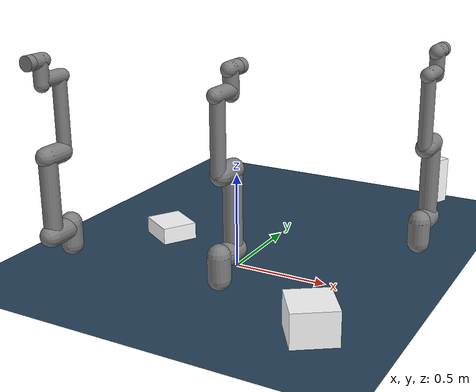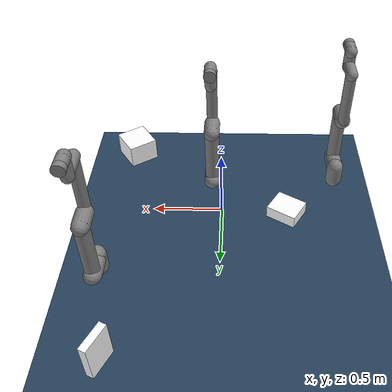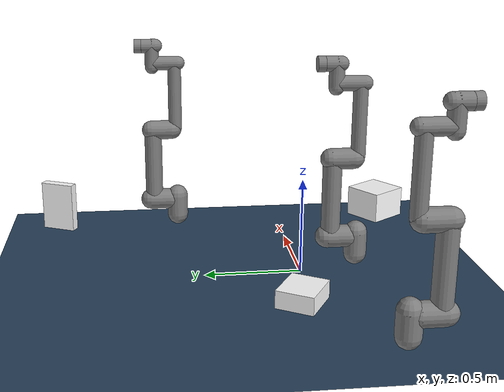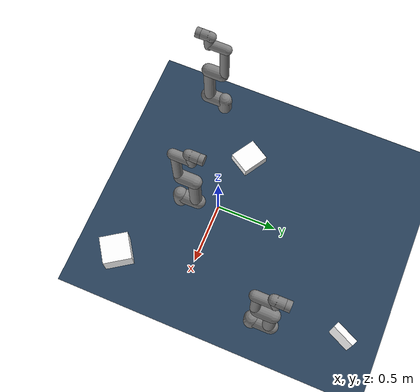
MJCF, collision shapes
<mujoco model="ur5e scene">
  <!--include file="ur5e.xml"/-->
  <include file="ur5e_three.xml"/>
  <include file="objs_three.xml"/>

  <statistic center="0.3 0 0.4" extent="0.8"/>

  <visual>
    <headlight diffuse="0.6 0.6 0.6" ambient="0.1 0.1 0.1" specular="0 0 0"/>
    <rgba haze="0.15 0.25 0.35 1"/>
    <global azimuth="120" elevation="-20"/>
  </visual>

  <asset>
    <texture type="skybox" builtin="gradient" rgb1="0.3 0.5 0.7" rgb2="0 0 0" width="512" height="3072"/>
    <texture type="2d" name="groundplane" builtin="checker" mark="edge" rgb1="0.2 0.3 0.4" rgb2="0.1 0.2 0.3"
      markrgb="0.8 0.8 0.8" width="300" height="300"/>
    <material name="groundplane" texture="groundplane" texuniform="true" texrepeat="5 5" reflectance="0.2"/>
  </asset>

  <worldbody>
    <light pos="0 0 1.5" dir="0 0 -1" directional="true"/>
    <geom name="floor" size="0 0 0.05" type="plane" material="groundplane"/>
  </worldbody>
</mujoco>

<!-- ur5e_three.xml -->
<mujoco model="ur5e">
  <compiler angle="radian" meshdir="ur5e_assets" autolimits="true"/>

  <option integrator="implicitfast"/>

  <default>
    <default class="ur5e">
      <material specular="0.5" shininess="0.25"/>
      <joint axis="0 1 0" range="-6.28319 6.28319" armature="0.1"/>
      <general gaintype="fixed" biastype="affine" ctrlrange="-6.2831 6.2831" gainprm="2000" biasprm="0 -2000 -400"
        forcerange="-150 150"/>
      <default class="size3">
        <default class="size3_limited">
          <joint range="-3.1415 3.1415"/>
          <general ctrlrange="-3.1415 3.1415"/>
        </default>
      </default>
      <default class="size1">
        <general gainprm="500" biasprm="0 -500 -100" forcerange="-28 28"/>
      </default>
      <default class="visual">
        <geom type="mesh" contype="0" conaffinity="0" group="2"/>
      </default>
      <default class="collision">
        <geom type="capsule" group="3"/>
        <default class="eef_collision">
          <geom type="cylinder"/>
        </default>
      </default>
      <site size="0.001" rgba="0.5 0.5 0.5 0.3" group="4"/>
    </default>
  </default>

  <asset>
    <material class="ur5e" name="black" rgba="0.033 0.033 0.033 1"/>
    <material class="ur5e" name="jointgray" rgba="0.278 0.278 0.278 1"/>
    <material class="ur5e" name="linkgray" rgba="0.82 0.82 0.82 1"/>
    <material class="ur5e" name="urblue" rgba="0.49 0.678 0.8 1"/>

    <mesh file="base_0.obj"/>
    <mesh file="base_1.obj"/>
    <mesh file="shoulder_0.obj"/>
    <mesh file="shoulder_1.obj"/>
    <mesh file="shoulder_2.obj"/>
    <mesh file="upperarm_0.obj"/>
    <mesh file="upperarm_1.obj"/>
    <mesh file="upperarm_2.obj"/>
    <mesh file="upperarm_3.obj"/>
    <mesh file="forearm_0.obj"/>
    <mesh file="forearm_1.obj"/>
    <mesh file="forearm_2.obj"/>
    <mesh file="forearm_3.obj"/>
    <mesh file="wrist1_0.obj"/>
    <mesh file="wrist1_1.obj"/>
    <mesh file="wrist1_2.obj"/>
    <mesh file="wrist2_0.obj"/>
    <mesh file="wrist2_1.obj"/>
    <mesh file="wrist2_2.obj"/>
    <mesh file="wrist3.obj"/>
  </asset>

  <worldbody>
    <light name="spotlight" mode="targetbodycom" target="wrist_2_link" pos="0 -1 2"/>
    <body name="base" pos="0.78679577 0.60309857 0.0" quat="6.123234e-17 0 0 1" childclass="ur5e">
      <inertial mass="4.0" pos="0 0 0" diaginertia="0.00443333156 0.00443333156 0.0072"/>
      <geom mesh="base_0" material="black" class="visual"/>
      <geom mesh="base_1" material="jointgray" class="visual"/>
      <body name="shoulder_link" pos="0 0 0.163" quat="0 0 0 1">
        <inertial mass="3.7" pos="0 0 0" diaginertia="0.0102675 0.0102675 0.00666"/>
        <joint name="shoulder_pan_joint" class="size3" axis="0 0 1"/>
        <geom mesh="shoulder_0" material="urblue" class="visual"/>
        <geom mesh="shoulder_1" material="black" class="visual"/>
        <geom mesh="shoulder_2" material="jointgray" class="visual"/>
        <geom class="collision" size="0.06 0.06" pos="0 0 -0.04"/>
        <body name="upper_arm_link" pos="0 0.138 0" quat="1 0 0 0">
          <inertial mass="8.393" pos="0 0 0.2125" diaginertia="0.133886 0.133886 0.0151074"/>
          <joint name="shoulder_lift_joint" class="size3"/>
          <geom mesh="upperarm_0" material="linkgray" class="visual"/>
          <geom mesh="upperarm_1" material="black" class="visual"/>
          <geom mesh="upperarm_2" material="jointgray" class="visual"/>
          <geom mesh="upperarm_3" material="urblue" class="visual"/>
          <geom class="collision" pos="0 -0.04 0" quat="1 1 0 0" size="0.06 0.06"/>
          <geom class="collision" size="0.05 0.2" pos="0 0 0.2"/>
          <body name="forearm_link" pos="0 -0.131 0.425">
            <inertial mass="2.275" pos="0 0 0.196" diaginertia="0.0311796 0.0311796 0.004095"/>
            <joint name="elbow_joint" class="size3_limited"/>
            <geom mesh="forearm_0" material="urblue" class="visual"/>
            <geom mesh="forearm_1" material="linkgray" class="visual"/>
            <geom mesh="forearm_2" material="black" class="visual"/>
            <geom mesh="forearm_3" material="jointgray" class="visual"/>
            <geom class="collision" pos="0 0.08 0" quat="1 1 0 0" size="0.055 0.06"/>
            <geom class="collision" size="0.038 0.19" pos="0 0 0.2"/>
            <body name="wrist_1_link" pos="0 0 0.392" quat="1 0 0 0">
              <inertial mass="1.219" pos="0 0.127 0" diaginertia="0.0025599 0.0025599 0.0021942"/>
              <joint name="wrist_1_joint" class="size1"/>
              <geom mesh="wrist1_0" material="black" class="visual"/>
              <geom mesh="wrist1_1" material="urblue" class="visual"/>
              <geom mesh="wrist1_2" material="jointgray" class="visual"/>
              <geom class="collision" pos="0 0.05 0" quat="1 1 0 0" size="0.04 0.07"/>
              <body name="wrist_2_link" pos="0 0.127 0">
                <inertial mass="1.219" pos="0 0 0.1" diaginertia="0.0025599 0.0025599 0.0021942"/>
                <joint name="wrist_2_joint" axis="0 0 1" class="size1"/>
                <geom mesh="wrist2_0" material="black" class="visual"/>
                <geom mesh="wrist2_1" material="urblue" class="visual"/>
                <geom mesh="wrist2_2" material="jointgray" class="visual"/>
                <geom class="collision" size="0.04 0.06" pos="0 0 0.04"/>
                <geom class="collision" pos="0 0.02 0.1" quat="1 1 0 0" size="0.04 0.04"/>
                <body name="wrist_3_link" pos="0 0 0.1">
                  <inertial mass="0.1889" pos="0 0.0771683 0" quat="1 0 0 1"
                    diaginertia="0.000132134 9.90863e-05 9.90863e-05"/>
                  <joint name="wrist_3_joint" class="size1"/>
                  <geom material="linkgray" mesh="wrist3" class="visual"/>
                  <geom class="eef_collision" pos="0 0.08 0" quat="1 1 0 0" size="0.04 0.02"/>
                  <site name="attachment_site" pos="0 0.1 0" quat="-1 1 0 0"/>
                </body>
              </body>
            </body>
          </body>
        </body>
      </body>
    </body>

    <body name="base_1" pos="0.07111342 -0.3053829 0.0" quat="6.123234e-17 0 0 1" childclass="ur5e">
      <inertial mass="4.0" pos="0 0 0" diaginertia="0.00443333156 0.00443333156 0.0072"/>
      <geom mesh="base_0" material="black" class="visual"/>
      <geom mesh="base_1" material="jointgray" class="visual"/>
      <body name="shoulder_link_1" pos="0 0 0.163" quat="0 0 0 1">
        <inertial mass="3.7" pos="0 0 0" diaginertia="0.0102675 0.0102675 0.00666"/>
        <joint name="shoulder_pan_joint_1" class="size3" axis="0 0 1"/>
        <geom mesh="shoulder_0" material="urblue" class="visual"/>
        <geom mesh="shoulder_1" material="black" class="visual"/>
        <geom mesh="shoulder_2" material="jointgray" class="visual"/>
        <geom class="collision" size="0.06 0.06" pos="0 0 -0.04"/>
        <body name="upper_arm_link_1" pos="0 0.138 0" quat="1 0 0 0">
          <inertial mass="8.393" pos="0 0 0.2125" diaginertia="0.133886 0.133886 0.0151074"/>
          <joint name="shoulder_lift_joint_1" class="size3"/>
          <geom mesh="upperarm_0" material="linkgray" class="visual"/>
          <geom mesh="upperarm_1" material="black" class="visual"/>
          <geom mesh="upperarm_2" material="jointgray" class="visual"/>
          <geom mesh="upperarm_3" material="urblue" class="visual"/>
          <geom class="collision" pos="0 -0.04 0" quat="1 1 0 0" size="0.06 0.06"/>
          <geom class="collision" size="0.05 0.2" pos="0 0 0.2"/>
          <body name="forearm_link_1" pos="0 -0.131 0.425">
            <inertial mass="2.275" pos="0 0 0.196" diaginertia="0.0311796 0.0311796 0.004095"/>
            <joint name="elbow_joint_1" class="size3_limited"/>
            <geom mesh="forearm_0" material="urblue" class="visual"/>
            <geom mesh="forearm_1" material="linkgray" class="visual"/>
            <geom mesh="forearm_2" material="black" class="visual"/>
            <geom mesh="forearm_3" material="jointgray" class="visual"/>
            <geom class="collision" pos="0 0.08 0" quat="1 1 0 0" size="0.055 0.06"/>
            <geom class="collision" size="0.038 0.19" pos="0 0 0.2"/>
            <body name="wrist_1_link_1" pos="0 0 0.392" quat="1 0 0 0">
              <inertial mass="1.219" pos="0 0.127 0" diaginertia="0.0025599 0.0025599 0.0021942"/>
              <joint name="wrist_1_joint_1" class="size1"/>
              <geom mesh="wrist1_0" material="black" class="visual"/>
              <geom mesh="wrist1_1" material="urblue" class="visual"/>
              <geom mesh="wrist1_2" material="jointgray" class="visual"/>
              <geom class="collision" pos="0 0.05 0" quat="1 1 0 0" size="0.04 0.07"/>
              <body name="wrist_2_link_1" pos="0 0.127 0">
                <inertial mass="1.219" pos="0 0 0.1" diaginertia="0.0025599 0.0025599 0.0021942"/>
                <joint name="wrist_2_joint_1" axis="0 0 1" class="size1"/>
                <geom mesh="wrist2_0" material="black" class="visual"/>
                <geom mesh="wrist2_1" material="urblue" class="visual"/>
                <geom mesh="wrist2_2" material="jointgray" class="visual"/>
                <geom class="collision" size="0.04 0.06" pos="0 0 0.04"/>
                <geom class="collision" pos="0 0.02 0.1" quat="1 1 0 0" size="0.04 0.04"/>
                <body name="wrist_3_link_1" pos="0 0 0.1">
                  <inertial mass="0.1889" pos="0 0.0771683 0" quat="1 0 0 1"
                    diaginertia="0.000132134 9.90863e-05 9.90863e-05"/>
                  <joint name="wrist_3_joint_1" class="size1"/>
                  <geom material="linkgray" mesh="wrist3" class="visual"/>
                  <geom class="eef_collision" pos="0 0.08 0" quat="1 1 0 0" size="0.04 0.02"/>
                  <site name="attachment_site_1" pos="0 0.1 0" quat="-1 1 0 0"/>
                </body>
              </body>
            </body>
          </body>
        </body>
      </body>
    </body>

    <body name="base_2" pos="-0.85790919 -0.29771567 0.0" quat="1 0 0 0" childclass="ur5e">
      <inertial mass="4.0" pos="0 0 0" diaginertia="0.00443333156 0.00443333156 0.0072"/>
      <geom mesh="base_0" material="black" class="visual"/>
      <geom mesh="base_1" material="jointgray" class="visual"/>
      <body name="shoulder_link_2" pos="0 0 0.163" quat="0 0 0 1">
        <inertial mass="3.7" pos="0 0 0" diaginertia="0.0102675 0.0102675 0.00666"/>
        <joint name="shoulder_pan_joint_2" class="size3" axis="0 0 1"/>
        <geom mesh="shoulder_0" material="urblue" class="visual"/>
        <geom mesh="shoulder_1" material="black" class="visual"/>
        <geom mesh="shoulder_2" material="jointgray" class="visual"/>
        <geom class="collision" size="0.06 0.06" pos="0 0 -0.04"/>
        <body name="upper_arm_link_2" pos="0 0.138 0" quat="1 0 0 0">
          <inertial mass="8.393" pos="0 0 0.2125" diaginertia="0.133886 0.133886 0.0151074"/>
          <joint name="shoulder_lift_joint_2" class="size3"/>
          <geom mesh="upperarm_0" material="linkgray" class="visual"/>
          <geom mesh="upperarm_1" material="black" class="visual"/>
          <geom mesh="upperarm_2" material="jointgray" class="visual"/>
          <geom mesh="upperarm_3" material="urblue" class="visual"/>
          <geom class="collision" pos="0 -0.04 0" quat="1 1 0 0" size="0.06 0.06"/>
          <geom class="collision" size="0.05 0.2" pos="0 0 0.2"/>
          <body name="forearm_link_2" pos="0 -0.131 0.425">
            <inertial mass="2.275" pos="0 0 0.196" diaginertia="0.0311796 0.0311796 0.004095"/>
            <joint name="elbow_joint_2" class="size3_limited"/>
            <geom mesh="forearm_0" material="urblue" class="visual"/>
            <geom mesh="forearm_1" material="linkgray" class="visual"/>
            <geom mesh="forearm_2" material="black" class="visual"/>
            <geom mesh="forearm_3" material="jointgray" class="visual"/>
            <geom class="collision" pos="0 0.08 0" quat="1 1 0 0" size="0.055 0.06"/>
            <geom class="collision" size="0.038 0.19" pos="0 0 0.2"/>
            <body name="wrist_1_link_2" pos="0 0 0.392" quat="1 0 0 0">
              <inertial mass="1.219" pos="0 0.127 0" diaginertia="0.0025599 0.0025599 0.0021942"/>
              <joint name="wrist_1_joint_2" class="size1"/>
              <geom mesh="wrist1_0" material="black" class="visual"/>
              <geom mesh="wrist1_1" material="urblue" class="visual"/>
              <geom mesh="wrist1_2" material="jointgray" class="visual"/>
              <geom class="collision" pos="0 0.05 0" quat="1 1 0 0" size="0.04 0.07"/>
              <body name="wrist_2_link_2" pos="0 0.127 0">
                <inertial mass="1.219" pos="0 0 0.1" diaginertia="0.0025599 0.0025599 0.0021942"/>
                <joint name="wrist_2_joint_2" axis="0 0 1" class="size1"/>
                <geom mesh="wrist2_0" material="black" class="visual"/>
                <geom mesh="wrist2_1" material="urblue" class="visual"/>
                <geom mesh="wrist2_2" material="jointgray" class="visual"/>
                <geom class="collision" size="0.04 0.06" pos="0 0 0.04"/>
                <geom class="collision" pos="0 0.02 0.1" quat="1 1 0 0" size="0.04 0.04"/>
                <body name="wrist_3_link_2" pos="0 0 0.1">
                  <inertial mass="0.1889" pos="0 0.0771683 0" quat="1 0 0 1"
                    diaginertia="0.000132134 9.90863e-05 9.90863e-05"/>
                  <joint name="wrist_3_joint_2" class="size1"/>
                  <geom material="linkgray" mesh="wrist3" class="visual"/>
                  <geom class="eef_collision" pos="0 0.08 0" quat="1 1 0 0" size="0.04 0.02"/>
                  <site name="attachment_site_2" pos="0 0.1 0" quat="-1 1 0 0"/>
                </body>
              </body>
            </body>
          </body>
        </body>
      </body>
    </body>

  </worldbody>

  <actuator>
    <general class="size3" name="shoulder_pan" joint="shoulder_pan_joint"/>
    <general class="size3" name="shoulder_lift" joint="shoulder_lift_joint"/>
    <general class="size3_limited" name="elbow" joint="elbow_joint"/>
    <general class="size1" name="wrist_1" joint="wrist_1_joint"/>
    <general class="size1" name="wrist_2" joint="wrist_2_joint"/>
    <general class="size1" name="wrist_3" joint="wrist_3_joint"/>
    <general class="size3" name="shoulder_pan_1" joint="shoulder_pan_joint_1"/>
    <general class="size3" name="shoulder_lift_1" joint="shoulder_lift_joint_1"/>
    <general class="size3_limited" name="elbow_1" joint="elbow_joint_1"/>
    <general class="size1" name="wrist_1_1" joint="wrist_1_joint_1"/>
    <general class="size1" name="wrist_2_1" joint="wrist_2_joint_1"/>
    <general class="size1" name="wrist_3_1" joint="wrist_3_joint_1"/>
    <general class="size3" name="shoulder_pan_2" joint="shoulder_pan_joint_2"/>
    <general class="size3" name="shoulder_lift_2" joint="shoulder_lift_joint_2"/>
    <general class="size3_limited" name="elbow_2" joint="elbow_joint_2"/>
    <general class="size1" name="wrist_1_2" joint="wrist_1_joint_2"/>
    <general class="size1" name="wrist_2_2" joint="wrist_2_joint_2"/>
    <general class="size1" name="wrist_3_2" joint="wrist_3_joint_2"/>
  </actuator>

  <keyframe>
    <key name="home_pose" qpos="0 0.5 -1.2 0 1.57 1.57
                                0 0.5 -1.2 0 1.57 1.57
                                0 0.5 -1.2 0 1.57 1.57
                                0.65363407 1.29098271 0.185 0.84497859 0 0 0.53480013
                                0.69461814 -0.58824875 0.135 0.88349256 0 0 -0.46844519
                                -0.46952242 0.08354221 0.095 0.48991374 0 0 -0.87177091"
                          ctrl="-1.5708 -1.5708 1.5708 -1.5708 -1.5708 0
                                -1.5708 -1.5708 1.5708 -1.5708 -1.5708 0
                                -1.5708 -1.5708 1.5708 -1.5708 -1.5708 0"/>
    <key name="start_pose" qpos="0 0.5 -1.2 0 1.57 1.57
                                  0 0.5 -1.2 0 1.57 1.57
                                  0 0.5 -1.2 0 1.57 1.57
                                  0.65363407 1.29098271 0.185 0.84497859 0 0 0.53480013
                                  0.69461814 -0.58824875 0.135 0.88349256 0 0 -0.46844519
                                  -0.46952242 0.08354221 0.095 0.48991374 0 0 -0.87177091"/>
  </keyframe>
</mujoco>

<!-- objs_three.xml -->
<mujoco>
  <compiler angle="radian" />

  <visual>
    <headlight ambient="0.1 0.1 0.1"/>
  </visual>

  <asset>
    <material name="white" rgba="1 1 1 1"/>
    <material name="goal" rgba="0 0 0 0.3"/>
  </asset>

  <option gravity="0 0 -9.8" />
  <worldbody>
    <body name="obj1" pos="0.65363407 1.29098271 0.185" quat="0.84497859 0 0 0.53480013">
      <joint type="free" />
      <inertial pos="0 0 0" mass="1" diaginertia="0.01 0.01 0.01"/>
      <geom type="box" size="0.095 0.025 0.135" material="white"/>
      <!--geom type="box" size="0.1 0.2 0.3" rgba="0.9 0 0 1"/-->
    </body>

    <body name="obj2" pos="0.69461814 -0.58824875 0.135" quat="0.88349256 0 0 -0.46844519">
      <joint type="free" />
      <inertial pos="0 0 0" mass="1" diaginertia="0.01 0.01 0.01"/>
      <geom type="box" size="0.115 0.11 0.085" material="white"/>
      <!--geom type="box" size="0.1 0.2 0.3" rgba="0.9 0 0 1"/-->
    </body>

    <body name="obj3" pos="-0.46952242 0.08354221 0.095" quat="0.48991374 0 0 -0.87177091">
      <joint type="free" />
      <inertial pos="0 0 0" mass="1" diaginertia="0.01 0.01 0.01"/>
      <geom type="box" size="0.095 0.11 0.045" material="white"/>
      <!--geom type="box" size="0.1 0.2 0.3" rgba="0.9 0 0 1"/-->
    </body>

  </worldbody>
</mujoco>
